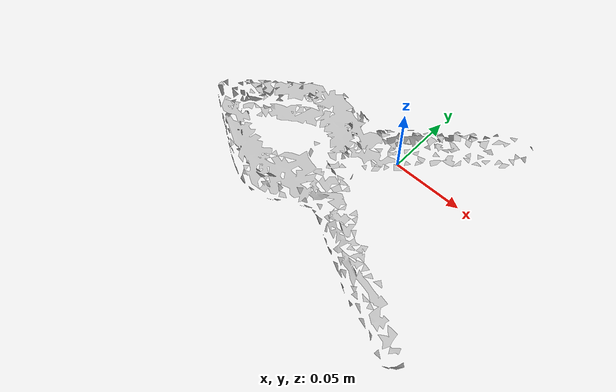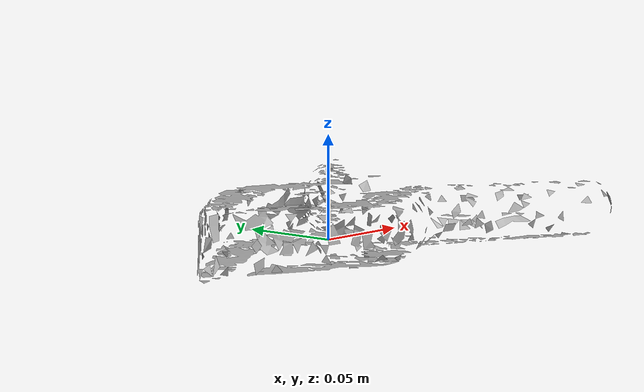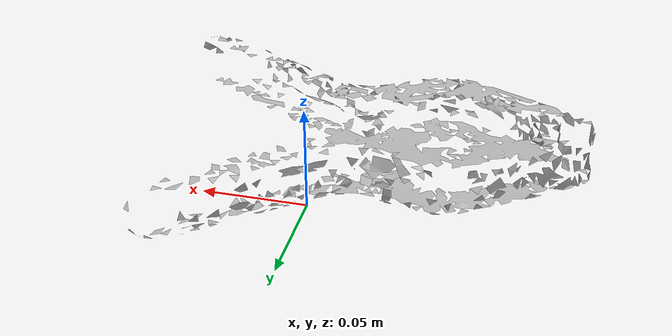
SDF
<?xml version="1.0" ?>
<sdf version="1.4">
  <model name='ycb_052_extra_large_clamp'>
    <link name='body'>
      <inertial>
        <mass>0.202</mass>
        <pose>-0.0295499340522 -0.036605381002 0.0180789437222 0 0 0</pose>
        <inertia>
          <ixx>0.000297412158172</ixx>
          <ixy>-2.58338243174e-05</ixy>
          <ixz>2.88445389814e-07</ixz>
          <iyy>0.000499324764363</iyy>
          <iyz>-2.01241360067e-06</iyz>
          <izz>0.000769346817989</izz>
        </inertia>
      </inertial>
      <visual name='ycb_052_extra_large_clamp_visual'>
        <pose>0 0 0 0 0 0</pose>
        <geometry>
          <mesh>
            <uri>model://ycb_052_extra_large_clamp/meshes/textured.dae</uri>
          </mesh>
        </geometry>
      </visual>
      <collision name='ycb_052_extra_large_clamp_collision'>
        <pose>0 0 0 0 0 0</pose>
        <geometry>
          <mesh>
            <uri>model://ycb_052_extra_large_clamp/meshes/nontextured.stl</uri>
          </mesh>
        </geometry>
        <max_contacts>10</max_contacts>
      </collision>
    </link>
  </model>
</sdf>
